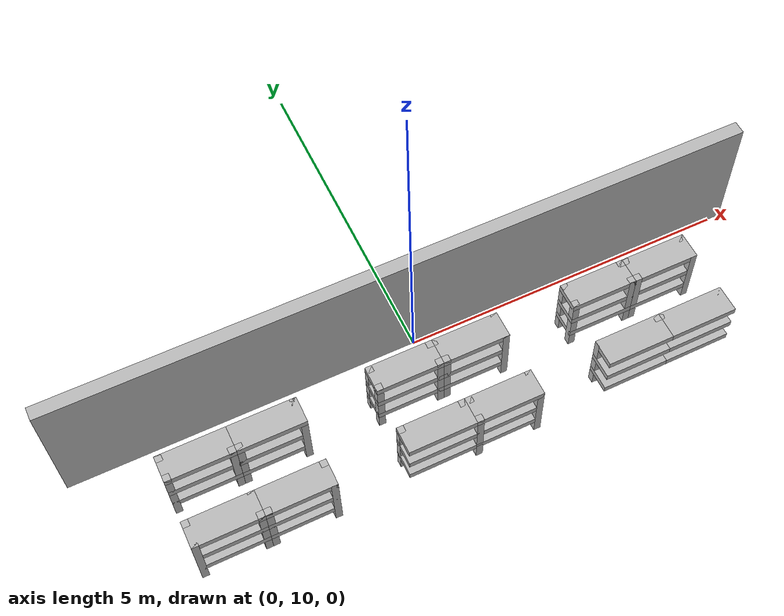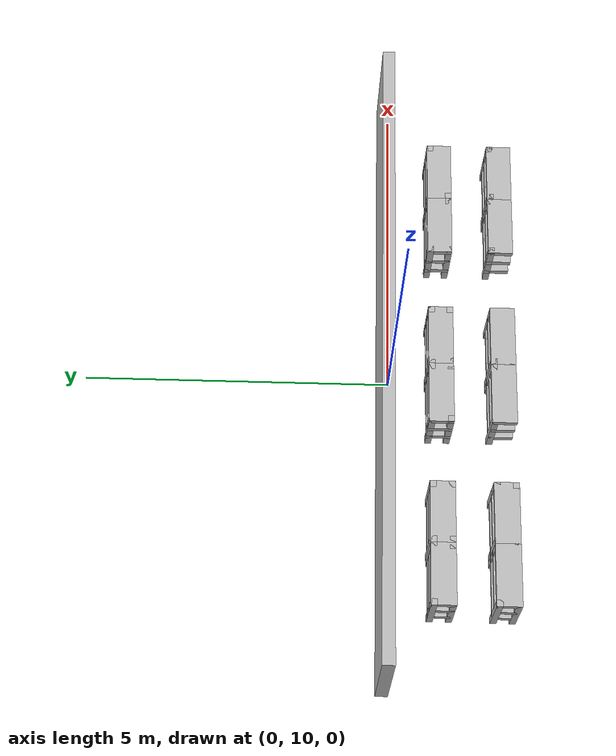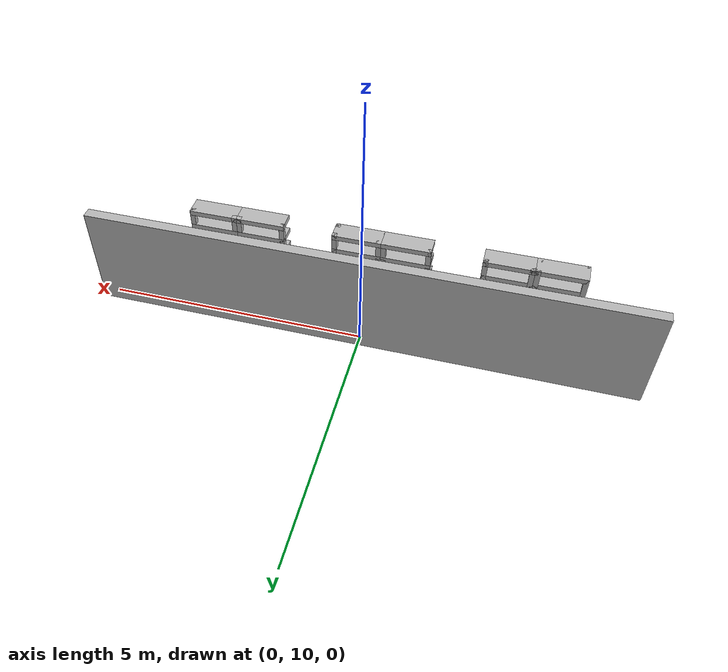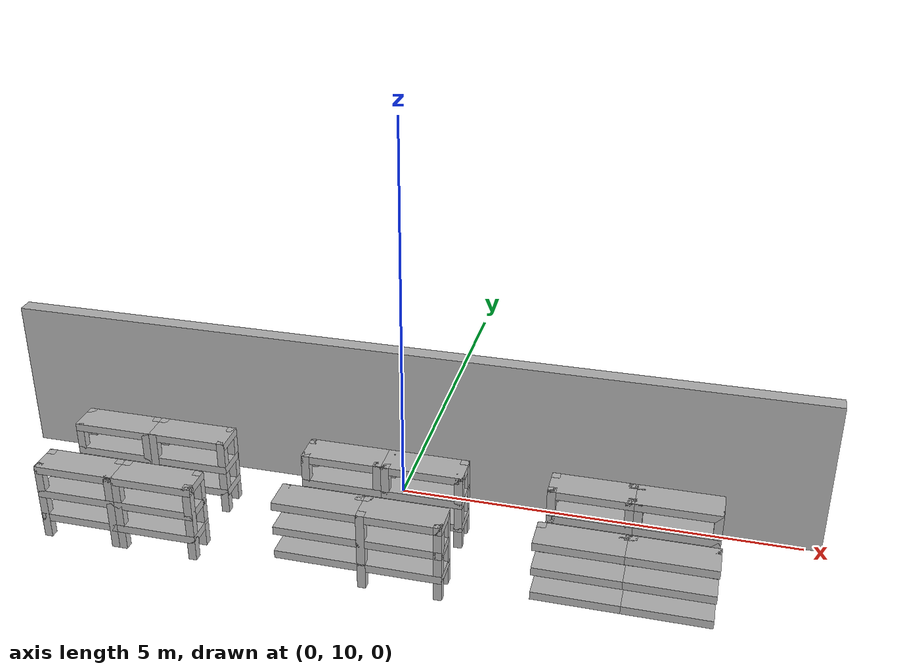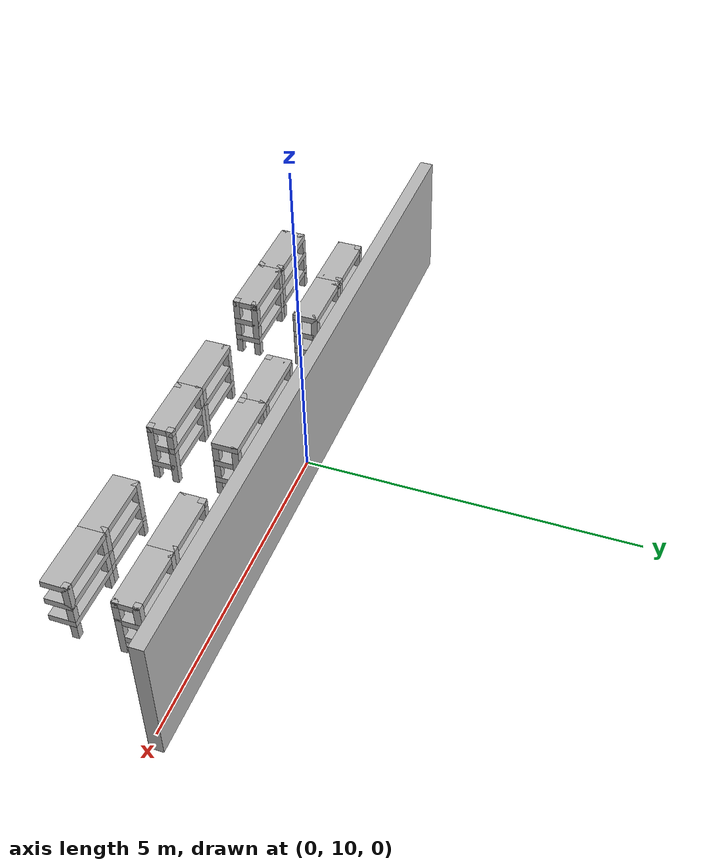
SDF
<sdf version="1.11">
 <model name="store-model">
  <static>true</static>
  <link name="store-shelf-l0-shelf0">
   <pose>2.5 9.2 0.95 0 0 0</pose>
   <visual name="store-shelf-v0-shelf0">
    <geometry><box><size>1 0.4 0.1</size></box></geometry>
    <material>
     <diffuse>0.726 0.726 0.726 1</diffuse>
     <ambient>0.726 0.726 0.726 1</ambient>
     <specular>0.726 0.726 0.726 1</specular>
    </material>
   </visual>
   <collision name="store-shelf-c0-shelf0"><geometry><box><size>1 0.4 0.1</size></box></geometry></collision>
  </link>
  <link name="store-shelf-l0-shelf1">
   <pose>2.5 9.2 0.6166666666666666 0 0 0</pose>
   <visual name="store-shelf-v0-shelf1">
    <geometry><box><size>1 0.4 0.1</size></box></geometry>
    <material>
     <diffuse>0.726 0.726 0.726 1</diffuse>
     <ambient>0.726 0.726 0.726 1</ambient>
     <specular>0.726 0.726 0.726 1</specular>
    </material>
   </visual>
   <collision name="store-shelf-c0-shelf1"><geometry><box><size>1 0.4 0.1</size></box></geometry></collision>
  </link>
  <link name="store-shelf-l0-shelf2">
   <pose>2.5 9.2 0.2833333333333333 0 0 0</pose>
   <visual name="store-shelf-v0-shelf2">
    <geometry><box><size>1 0.4 0.1</size></box></geometry>
    <material>
     <diffuse>0.726 0.726 0.726 1</diffuse>
     <ambient>0.726 0.726 0.726 1</ambient>
     <specular>0.726 0.726 0.726 1</specular>
    </material>
   </visual>
   <collision name="store-shelf-c0-shelf2"><geometry><box><size>1 0.4 0.1</size></box></geometry></collision>
  </link>
  <link name="store-shelf-l0-support0">
   <pose>2.05 9.05 0.5 0 0 0</pose>
   <visual name="store-shelf-v0-support0">
    <geometry><box><size>0.1 0.1 1</size></box></geometry>
    <material>
     <diffuse>0.726 0.726 0.726 1</diffuse>
     <ambient>0.726 0.726 0.726 1</ambient>
     <specular>0.726 0.726 0.726 1</specular>
    </material>
   </visual>
   <collision name="store-shelf-c0-support0"><geometry><box><size>0.1 0.1 1</size></box></geometry></collision>
  </link>
  <link name="store-shelf-l0-support1">
   <pose>2.95 9.05 0.5 0 0 0</pose>
   <visual name="store-shelf-v0-support1">
    <geometry><box><size>0.1 0.1 1</size></box></geometry>
    <material>
     <diffuse>0.726 0.726 0.726 1</diffuse>
     <ambient>0.726 0.726 0.726 1</ambient>
     <specular>0.726 0.726 0.726 1</specular>
    </material>
   </visual>
   <collision name="store-shelf-c0-support1"><geometry><box><size>0.1 0.1 1</size></box></geometry></collision>
  </link>
  <link name="store-shelf-l0-support2">
   <pose>2.05 9.35 0.5 0 0 0</pose>
   <visual name="store-shelf-v0-support2">
    <geometry><box><size>0.1 0.1 1</size></box></geometry>
    <material>
     <diffuse>0.726 0.726 0.726 1</diffuse>
     <ambient>0.726 0.726 0.726 1</ambient>
     <specular>0.726 0.726 0.726 1</specular>
    </material>
   </visual>
   <collision name="store-shelf-c0-support2"><geometry><box><size>0.1 0.1 1</size></box></geometry></collision>
  </link>
  <link name="store-shelf-l0-support3">
   <pose>2.95 9.35 0.5 0 0 0</pose>
   <visual name="store-shelf-v0-support3">
    <geometry><box><size>0.1 0.1 1</size></box></geometry>
    <material>
     <diffuse>0.726 0.726 0.726 1</diffuse>
     <ambient>0.726 0.726 0.726 1</ambient>
     <specular>0.726 0.726 0.726 1</specular>
    </material>
   </visual>
   <collision name="store-shelf-c0-support3"><geometry><box><size>0.1 0.1 1</size></box></geometry></collision>
  </link>
  <link name="store-shelf-l1-shelf0">
   <pose>2.5 8.2 0.95 0 0 0</pose>
   <visual name="store-shelf-v1-shelf0">
    <geometry><box><size>1 0.4 0.1</size></box></geometry>
    <material>
     <diffuse>0.726 0.726 0.726 1</diffuse>
     <ambient>0.726 0.726 0.726 1</ambient>
     <specular>0.726 0.726 0.726 1</specular>
    </material>
   </visual>
   <collision name="store-shelf-c1-shelf0"><geometry><box><size>1 0.4 0.1</size></box></geometry></collision>
  </link>
  <link name="store-shelf-l1-shelf1">
   <pose>2.5 8.2 0.6166666666666666 0 0 0</pose>
   <visual name="store-shelf-v1-shelf1">
    <geometry><box><size>1 0.4 0.1</size></box></geometry>
    <material>
     <diffuse>0.726 0.726 0.726 1</diffuse>
     <ambient>0.726 0.726 0.726 1</ambient>
     <specular>0.726 0.726 0.726 1</specular>
    </material>
   </visual>
   <collision name="store-shelf-c1-shelf1"><geometry><box><size>1 0.4 0.1</size></box></geometry></collision>
  </link>
  <link name="store-shelf-l1-shelf2">
   <pose>2.5 8.2 0.2833333333333333 0 0 0</pose>
   <visual name="store-shelf-v1-shelf2">
    <geometry><box><size>1 0.4 0.1</size></box></geometry>
    <material>
     <diffuse>0.726 0.726 0.726 1</diffuse>
     <ambient>0.726 0.726 0.726 1</ambient>
     <specular>0.726 0.726 0.726 1</specular>
    </material>
   </visual>
   <collision name="store-shelf-c1-shelf2"><geometry><box><size>1 0.4 0.1</size></box></geometry></collision>
  </link>
  <link name="store-shelf-l1-support2">
   <pose>2.05 8.35 0.5 0 0 0</pose>
   <visual name="store-shelf-v1-support2">
    <geometry><box><size>0.1 0.1 1</size></box></geometry>
    <material>
     <diffuse>0.726 0.726 0.726 1</diffuse>
     <ambient>0.726 0.726 0.726 1</ambient>
     <specular>0.726 0.726 0.726 1</specular>
    </material>
   </visual>
   <collision name="store-shelf-c1-support2"><geometry><box><size>0.1 0.1 1</size></box></geometry></collision>
  </link>
  <link name="store-shelf-l1-support3">
   <pose>2.95 8.35 0.5 0 0 0</pose>
   <visual name="store-shelf-v1-support3">
    <geometry><box><size>0.1 0.1 1</size></box></geometry>
    <material>
     <diffuse>0.726 0.726 0.726 1</diffuse>
     <ambient>0.726 0.726 0.726 1</ambient>
     <specular>0.726 0.726 0.726 1</specular>
    </material>
   </visual>
   <collision name="store-shelf-c1-support3"><geometry><box><size>0.1 0.1 1</size></box></geometry></collision>
  </link>
  <link name="store-shelf-l4-shelf0">
   <pose>3.5 8.2 0.95 0 0 0</pose>
   <visual name="store-shelf-v4-shelf0">
    <geometry><box><size>1 0.4 0.1</size></box></geometry>
    <material>
     <diffuse>0.726 0.726 0.726 1</diffuse>
     <ambient>0.726 0.726 0.726 1</ambient>
     <specular>0.726 0.726 0.726 1</specular>
    </material>
   </visual>
   <collision name="store-shelf-c4-shelf0"><geometry><box><size>1 0.4 0.1</size></box></geometry></collision>
  </link>
  <link name="store-shelf-l4-shelf1">
   <pose>3.5 8.2 0.6166666666666666 0 0 0</pose>
   <visual name="store-shelf-v4-shelf1">
    <geometry><box><size>1 0.4 0.1</size></box></geometry>
    <material>
     <diffuse>0.726 0.726 0.726 1</diffuse>
     <ambient>0.726 0.726 0.726 1</ambient>
     <specular>0.726 0.726 0.726 1</specular>
    </material>
   </visual>
   <collision name="store-shelf-c4-shelf1"><geometry><box><size>1 0.4 0.1</size></box></geometry></collision>
  </link>
  <link name="store-shelf-l4-shelf2">
   <pose>3.5 8.2 0.2833333333333333 0 0 0</pose>
   <visual name="store-shelf-v4-shelf2">
    <geometry><box><size>1 0.4 0.1</size></box></geometry>
    <material>
     <diffuse>0.726 0.726 0.726 1</diffuse>
     <ambient>0.726 0.726 0.726 1</ambient>
     <specular>0.726 0.726 0.726 1</specular>
    </material>
   </visual>
   <collision name="store-shelf-c4-shelf2"><geometry><box><size>1 0.4 0.1</size></box></geometry></collision>
  </link>
  <link name="store-shelf-l4-support2">
   <pose>3.05 8.35 0.5 0 0 0</pose>
   <visual name="store-shelf-v4-support2">
    <geometry><box><size>0.1 0.1 1</size></box></geometry>
    <material>
     <diffuse>0.726 0.726 0.726 1</diffuse>
     <ambient>0.726 0.726 0.726 1</ambient>
     <specular>0.726 0.726 0.726 1</specular>
    </material>
   </visual>
   <collision name="store-shelf-c4-support2"><geometry><box><size>0.1 0.1 1</size></box></geometry></collision>
  </link>
  <link name="store-shelf-l4-support3">
   <pose>3.95 8.35 0.5 0 0 0</pose>
   <visual name="store-shelf-v4-support3">
    <geometry><box><size>0.1 0.1 1</size></box></geometry>
    <material>
     <diffuse>0.726 0.726 0.726 1</diffuse>
     <ambient>0.726 0.726 0.726 1</ambient>
     <specular>0.726 0.726 0.726 1</specular>
    </material>
   </visual>
   <collision name="store-shelf-c4-support3"><geometry><box><size>0.1 0.1 1</size></box></geometry></collision>
  </link>
  <link name="store-shelf-l5-shelf0">
   <pose>3.5 9.2 0.95 0 0 0</pose>
   <visual name="store-shelf-v5-shelf0">
    <geometry><box><size>1 0.4 0.1</size></box></geometry>
    <material>
     <diffuse>0.726 0.726 0.726 1</diffuse>
     <ambient>0.726 0.726 0.726 1</ambient>
     <specular>0.726 0.726 0.726 1</specular>
    </material>
   </visual>
   <collision name="store-shelf-c5-shelf0"><geometry><box><size>1 0.4 0.1</size></box></geometry></collision>
  </link>
  <link name="store-shelf-l5-shelf1">
   <pose>3.5 9.2 0.6166666666666666 0 0 0</pose>
   <visual name="store-shelf-v5-shelf1">
    <geometry><box><size>1 0.4 0.1</size></box></geometry>
    <material>
     <diffuse>0.726 0.726 0.726 1</diffuse>
     <ambient>0.726 0.726 0.726 1</ambient>
     <specular>0.726 0.726 0.726 1</specular>
    </material>
   </visual>
   <collision name="store-shelf-c5-shelf1"><geometry><box><size>1 0.4 0.1</size></box></geometry></collision>
  </link>
  <link name="store-shelf-l5-shelf2">
   <pose>3.5 9.2 0.2833333333333333 0 0 0</pose>
   <visual name="store-shelf-v5-shelf2">
    <geometry><box><size>1 0.4 0.1</size></box></geometry>
    <material>
     <diffuse>0.726 0.726 0.726 1</diffuse>
     <ambient>0.726 0.726 0.726 1</ambient>
     <specular>0.726 0.726 0.726 1</specular>
    </material>
   </visual>
   <collision name="store-shelf-c5-shelf2"><geometry><box><size>1 0.4 0.1</size></box></geometry></collision>
  </link>
  <link name="store-shelf-l5-support0">
   <pose>3.05 9.05 0.5 0 0 0</pose>
   <visual name="store-shelf-v5-support0">
    <geometry><box><size>0.1 0.1 1</size></box></geometry>
    <material>
     <diffuse>0.726 0.726 0.726 1</diffuse>
     <ambient>0.726 0.726 0.726 1</ambient>
     <specular>0.726 0.726 0.726 1</specular>
    </material>
   </visual>
   <collision name="store-shelf-c5-support0"><geometry><box><size>0.1 0.1 1</size></box></geometry></collision>
  </link>
  <link name="store-shelf-l5-support1">
   <pose>3.95 9.05 0.5 0 0 0</pose>
   <visual name="store-shelf-v5-support1">
    <geometry><box><size>0.1 0.1 1</size></box></geometry>
    <material>
     <diffuse>0.726 0.726 0.726 1</diffuse>
     <ambient>0.726 0.726 0.726 1</ambient>
     <specular>0.726 0.726 0.726 1</specular>
    </material>
   </visual>
   <collision name="store-shelf-c5-support1"><geometry><box><size>0.1 0.1 1</size></box></geometry></collision>
  </link>
  <link name="store-shelf-l5-support2">
   <pose>3.05 9.35 0.5 0 0 0</pose>
   <visual name="store-shelf-v5-support2">
    <geometry><box><size>0.1 0.1 1</size></box></geometry>
    <material>
     <diffuse>0.726 0.726 0.726 1</diffuse>
     <ambient>0.726 0.726 0.726 1</ambient>
     <specular>0.726 0.726 0.726 1</specular>
    </material>
   </visual>
   <collision name="store-shelf-c5-support2"><geometry><box><size>0.1 0.1 1</size></box></geometry></collision>
  </link>
  <link name="store-shelf-l5-support3">
   <pose>3.95 9.35 0.5 0 0 0</pose>
   <visual name="store-shelf-v5-support3">
    <geometry><box><size>0.1 0.1 1</size></box></geometry>
    <material>
     <diffuse>0.726 0.726 0.726 1</diffuse>
     <ambient>0.726 0.726 0.726 1</ambient>
     <specular>0.726 0.726 0.726 1</specular>
    </material>
   </visual>
   <collision name="store-shelf-c5-support3"><geometry><box><size>0.1 0.1 1</size></box></geometry></collision>
  </link>
  <link name="store-shelf-l7-shelf0">
   <pose>-0.5 8.2 0.95 0 0 0</pose>
   <visual name="store-shelf-v7-shelf0">
    <geometry><box><size>1 0.4 0.1</size></box></geometry>
    <material>
     <diffuse>0.726 0.726 0.726 1</diffuse>
     <ambient>0.726 0.726 0.726 1</ambient>
     <specular>0.726 0.726 0.726 1</specular>
    </material>
   </visual>
   <collision name="store-shelf-c7-shelf0"><geometry><box><size>1 0.4 0.1</size></box></geometry></collision>
  </link>
  <link name="store-shelf-l7-shelf1">
   <pose>-0.5 8.2 0.6166666666666666 0 0 0</pose>
   <visual name="store-shelf-v7-shelf1">
    <geometry><box><size>1 0.4 0.1</size></box></geometry>
    <material>
     <diffuse>0.726 0.726 0.726 1</diffuse>
     <ambient>0.726 0.726 0.726 1</ambient>
     <specular>0.726 0.726 0.726 1</specular>
    </material>
   </visual>
   <collision name="store-shelf-c7-shelf1"><geometry><box><size>1 0.4 0.1</size></box></geometry></collision>
  </link>
  <link name="store-shelf-l7-shelf2">
   <pose>-0.5 8.2 0.2833333333333333 0 0 0</pose>
   <visual name="store-shelf-v7-shelf2">
    <geometry><box><size>1 0.4 0.1</size></box></geometry>
    <material>
     <diffuse>0.726 0.726 0.726 1</diffuse>
     <ambient>0.726 0.726 0.726 1</ambient>
     <specular>0.726 0.726 0.726 1</specular>
    </material>
   </visual>
   <collision name="store-shelf-c7-shelf2"><geometry><box><size>1 0.4 0.1</size></box></geometry></collision>
  </link>
  <link name="store-shelf-l7-support2">
   <pose>-0.95 8.35 0.5 0 0 0</pose>
   <visual name="store-shelf-v7-support2">
    <geometry><box><size>0.1 0.1 1</size></box></geometry>
    <material>
     <diffuse>0.726 0.726 0.726 1</diffuse>
     <ambient>0.726 0.726 0.726 1</ambient>
     <specular>0.726 0.726 0.726 1</specular>
    </material>
   </visual>
   <collision name="store-shelf-c7-support2"><geometry><box><size>0.1 0.1 1</size></box></geometry></collision>
  </link>
  <link name="store-shelf-l7-support3">
   <pose>-0.05 8.35 0.5 0 0 0</pose>
   <visual name="store-shelf-v7-support3">
    <geometry><box><size>0.1 0.1 1</size></box></geometry>
    <material>
     <diffuse>0.726 0.726 0.726 1</diffuse>
     <ambient>0.726 0.726 0.726 1</ambient>
     <specular>0.726 0.726 0.726 1</specular>
    </material>
   </visual>
   <collision name="store-shelf-c7-support3"><geometry><box><size>0.1 0.1 1</size></box></geometry></collision>
  </link>
  <link name="store-shelf-l8-shelf0">
   <pose>-0.5 9.2 0.95 0 0 0</pose>
   <visual name="store-shelf-v8-shelf0">
    <geometry><box><size>1 0.4 0.1</size></box></geometry>
    <material>
     <diffuse>0.726 0.726 0.726 1</diffuse>
     <ambient>0.726 0.726 0.726 1</ambient>
     <specular>0.726 0.726 0.726 1</specular>
    </material>
   </visual>
   <collision name="store-shelf-c8-shelf0"><geometry><box><size>1 0.4 0.1</size></box></geometry></collision>
  </link>
  <link name="store-shelf-l8-shelf1">
   <pose>-0.5 9.2 0.6166666666666666 0 0 0</pose>
   <visual name="store-shelf-v8-shelf1">
    <geometry><box><size>1 0.4 0.1</size></box></geometry>
    <material>
     <diffuse>0.726 0.726 0.726 1</diffuse>
     <ambient>0.726 0.726 0.726 1</ambient>
     <specular>0.726 0.726 0.726 1</specular>
    </material>
   </visual>
   <collision name="store-shelf-c8-shelf1"><geometry><box><size>1 0.4 0.1</size></box></geometry></collision>
  </link>
  <link name="store-shelf-l8-shelf2">
   <pose>-0.5 9.2 0.2833333333333333 0 0 0</pose>
   <visual name="store-shelf-v8-shelf2">
    <geometry><box><size>1 0.4 0.1</size></box></geometry>
    <material>
     <diffuse>0.726 0.726 0.726 1</diffuse>
     <ambient>0.726 0.726 0.726 1</ambient>
     <specular>0.726 0.726 0.726 1</specular>
    </material>
   </visual>
   <collision name="store-shelf-c8-shelf2"><geometry><box><size>1 0.4 0.1</size></box></geometry></collision>
  </link>
  <link name="store-shelf-l8-support0">
   <pose>-0.95 9.05 0.5 0 0 0</pose>
   <visual name="store-shelf-v8-support0">
    <geometry><box><size>0.1 0.1 1</size></box></geometry>
    <material>
     <diffuse>0.726 0.726 0.726 1</diffuse>
     <ambient>0.726 0.726 0.726 1</ambient>
     <specular>0.726 0.726 0.726 1</specular>
    </material>
   </visual>
   <collision name="store-shelf-c8-support0"><geometry><box><size>0.1 0.1 1</size></box></geometry></collision>
  </link>
  <link name="store-shelf-l8-support1">
   <pose>-0.05 9.05 0.5 0 0 0</pose>
   <visual name="store-shelf-v8-support1">
    <geometry><box><size>0.1 0.1 1</size></box></geometry>
    <material>
     <diffuse>0.726 0.726 0.726 1</diffuse>
     <ambient>0.726 0.726 0.726 1</ambient>
     <specular>0.726 0.726 0.726 1</specular>
    </material>
   </visual>
   <collision name="store-shelf-c8-support1"><geometry><box><size>0.1 0.1 1</size></box></geometry></collision>
  </link>
  <link name="store-shelf-l8-support2">
   <pose>-0.95 9.35 0.5 0 0 0</pose>
   <visual name="store-shelf-v8-support2">
    <geometry><box><size>0.1 0.1 1</size></box></geometry>
    <material>
     <diffuse>0.726 0.726 0.726 1</diffuse>
     <ambient>0.726 0.726 0.726 1</ambient>
     <specular>0.726 0.726 0.726 1</specular>
    </material>
   </visual>
   <collision name="store-shelf-c8-support2"><geometry><box><size>0.1 0.1 1</size></box></geometry></collision>
  </link>
  <link name="store-shelf-l8-support3">
   <pose>-0.05 9.35 0.5 0 0 0</pose>
   <visual name="store-shelf-v8-support3">
    <geometry><box><size>0.1 0.1 1</size></box></geometry>
    <material>
     <diffuse>0.726 0.726 0.726 1</diffuse>
     <ambient>0.726 0.726 0.726 1</ambient>
     <specular>0.726 0.726 0.726 1</specular>
    </material>
   </visual>
   <collision name="store-shelf-c8-support3"><geometry><box><size>0.1 0.1 1</size></box></geometry></collision>
  </link>
  <link name="store-shelf-l10-shelf0">
   <pose>0.5 8.2 0.95 0 0 0</pose>
   <visual name="store-shelf-v10-shelf0">
    <geometry><box><size>1 0.4 0.1</size></box></geometry>
    <material>
     <diffuse>0.726 0.726 0.726 1</diffuse>
     <ambient>0.726 0.726 0.726 1</ambient>
     <specular>0.726 0.726 0.726 1</specular>
    </material>
   </visual>
   <collision name="store-shelf-c10-shelf0"><geometry><box><size>1 0.4 0.1</size></box></geometry></collision>
  </link>
  <link name="store-shelf-l10-shelf1">
   <pose>0.5 8.2 0.6166666666666666 0 0 0</pose>
   <visual name="store-shelf-v10-shelf1">
    <geometry><box><size>1 0.4 0.1</size></box></geometry>
    <material>
     <diffuse>0.726 0.726 0.726 1</diffuse>
     <ambient>0.726 0.726 0.726 1</ambient>
     <specular>0.726 0.726 0.726 1</specular>
    </material>
   </visual>
   <collision name="store-shelf-c10-shelf1"><geometry><box><size>1 0.4 0.1</size></box></geometry></collision>
  </link>
  <link name="store-shelf-l10-shelf2">
   <pose>0.5 8.2 0.2833333333333333 0 0 0</pose>
   <visual name="store-shelf-v10-shelf2">
    <geometry><box><size>1 0.4 0.1</size></box></geometry>
    <material>
     <diffuse>0.726 0.726 0.726 1</diffuse>
     <ambient>0.726 0.726 0.726 1</ambient>
     <specular>0.726 0.726 0.726 1</specular>
    </material>
   </visual>
   <collision name="store-shelf-c10-shelf2"><geometry><box><size>1 0.4 0.1</size></box></geometry></collision>
  </link>
  <link name="store-shelf-l10-support0">
   <pose>0.05 8.05 0.5 0 0 0</pose>
   <visual name="store-shelf-v10-support0">
    <geometry><box><size>0.1 0.1 1</size></box></geometry>
    <material>
     <diffuse>0.726 0.726 0.726 1</diffuse>
     <ambient>0.726 0.726 0.726 1</ambient>
     <specular>0.726 0.726 0.726 1</specular>
    </material>
   </visual>
   <collision name="store-shelf-c10-support0"><geometry><box><size>0.1 0.1 1</size></box></geometry></collision>
  </link>
  <link name="store-shelf-l10-support1">
   <pose>0.95 8.05 0.5 0 0 0</pose>
   <visual name="store-shelf-v10-support1">
    <geometry><box><size>0.1 0.1 1</size></box></geometry>
    <material>
     <diffuse>0.726 0.726 0.726 1</diffuse>
     <ambient>0.726 0.726 0.726 1</ambient>
     <specular>0.726 0.726 0.726 1</specular>
    </material>
   </visual>
   <collision name="store-shelf-c10-support1"><geometry><box><size>0.1 0.1 1</size></box></geometry></collision>
  </link>
  <link name="store-shelf-l10-support2">
   <pose>0.05 8.35 0.5 0 0 0</pose>
   <visual name="store-shelf-v10-support2">
    <geometry><box><size>0.1 0.1 1</size></box></geometry>
    <material>
     <diffuse>0.726 0.726 0.726 1</diffuse>
     <ambient>0.726 0.726 0.726 1</ambient>
     <specular>0.726 0.726 0.726 1</specular>
    </material>
   </visual>
   <collision name="store-shelf-c10-support2"><geometry><box><size>0.1 0.1 1</size></box></geometry></collision>
  </link>
  <link name="store-shelf-l10-support3">
   <pose>0.95 8.35 0.5 0 0 0</pose>
   <visual name="store-shelf-v10-support3">
    <geometry><box><size>0.1 0.1 1</size></box></geometry>
    <material>
     <diffuse>0.726 0.726 0.726 1</diffuse>
     <ambient>0.726 0.726 0.726 1</ambient>
     <specular>0.726 0.726 0.726 1</specular>
    </material>
   </visual>
   <collision name="store-shelf-c10-support3"><geometry><box><size>0.1 0.1 1</size></box></geometry></collision>
  </link>
  <link name="store-shelf-l11-shelf0">
   <pose>0.5 9.2 0.95 0 0 0</pose>
   <visual name="store-shelf-v11-shelf0">
    <geometry><box><size>1 0.4 0.1</size></box></geometry>
    <material>
     <diffuse>0.726 0.726 0.726 1</diffuse>
     <ambient>0.726 0.726 0.726 1</ambient>
     <specular>0.726 0.726 0.726 1</specular>
    </material>
   </visual>
   <collision name="store-shelf-c11-shelf0"><geometry><box><size>1 0.4 0.1</size></box></geometry></collision>
  </link>
  <link name="store-shelf-l11-shelf1">
   <pose>0.5 9.2 0.6166666666666666 0 0 0</pose>
   <visual name="store-shelf-v11-shelf1">
    <geometry><box><size>1 0.4 0.1</size></box></geometry>
    <material>
     <diffuse>0.726 0.726 0.726 1</diffuse>
     <ambient>0.726 0.726 0.726 1</ambient>
     <specular>0.726 0.726 0.726 1</specular>
    </material>
   </visual>
   <collision name="store-shelf-c11-shelf1"><geometry><box><size>1 0.4 0.1</size></box></geometry></collision>
  </link>
  <link name="store-shelf-l11-shelf2">
   <pose>0.5 9.2 0.2833333333333333 0 0 0</pose>
   <visual name="store-shelf-v11-shelf2">
    <geometry><box><size>1 0.4 0.1</size></box></geometry>
    <material>
     <diffuse>0.726 0.726 0.726 1</diffuse>
     <ambient>0.726 0.726 0.726 1</ambient>
     <specular>0.726 0.726 0.726 1</specular>
    </material>
   </visual>
   <collision name="store-shelf-c11-shelf2"><geometry><box><size>1 0.4 0.1</size></box></geometry></collision>
  </link>
  <link name="store-shelf-l11-support0">
   <pose>0.05 9.05 0.5 0 0 0</pose>
   <visual name="store-shelf-v11-support0">
    <geometry><box><size>0.1 0.1 1</size></box></geometry>
    <material>
     <diffuse>0.726 0.726 0.726 1</diffuse>
     <ambient>0.726 0.726 0.726 1</ambient>
     <specular>0.726 0.726 0.726 1</specular>
    </material>
   </visual>
   <collision name="store-shelf-c11-support0"><geometry><box><size>0.1 0.1 1</size></box></geometry></collision>
  </link>
  <link name="store-shelf-l11-support1">
   <pose>0.95 9.05 0.5 0 0 0</pose>
   <visual name="store-shelf-v11-support1">
    <geometry><box><size>0.1 0.1 1</size></box></geometry>
    <material>
     <diffuse>0.726 0.726 0.726 1</diffuse>
     <ambient>0.726 0.726 0.726 1</ambient>
     <specular>0.726 0.726 0.726 1</specular>
    </material>
   </visual>
   <collision name="store-shelf-c11-support1"><geometry><box><size>0.1 0.1 1</size></box></geometry></collision>
  </link>
  <link name="store-shelf-l11-support2">
   <pose>0.05 9.35 0.5 0 0 0</pose>
   <visual name="store-shelf-v11-support2">
    <geometry><box><size>0.1 0.1 1</size></box></geometry>
    <material>
     <diffuse>0.726 0.726 0.726 1</diffuse>
     <ambient>0.726 0.726 0.726 1</ambient>
     <specular>0.726 0.726 0.726 1</specular>
    </material>
   </visual>
   <collision name="store-shelf-c11-support2"><geometry><box><size>0.1 0.1 1</size></box></geometry></collision>
  </link>
  <link name="store-shelf-l11-support3">
   <pose>0.95 9.35 0.5 0 0 0</pose>
   <visual name="store-shelf-v11-support3">
    <geometry><box><size>0.1 0.1 1</size></box></geometry>
    <material>
     <diffuse>0.726 0.726 0.726 1</diffuse>
     <ambient>0.726 0.726 0.726 1</ambient>
     <specular>0.726 0.726 0.726 1</specular>
    </material>
   </visual>
   <collision name="store-shelf-c11-support3"><geometry><box><size>0.1 0.1 1</size></box></geometry></collision>
  </link>
  <link name="store-shelf-l13-shelf0">
   <pose>-3.5 8.2 0.95 0 0 0</pose>
   <visual name="store-shelf-v13-shelf0">
    <geometry><box><size>1 0.4 0.1</size></box></geometry>
    <material>
     <diffuse>0.726 0.726 0.726 1</diffuse>
     <ambient>0.726 0.726 0.726 1</ambient>
     <specular>0.726 0.726 0.726 1</specular>
    </material>
   </visual>
   <collision name="store-shelf-c13-shelf0"><geometry><box><size>1 0.4 0.1</size></box></geometry></collision>
  </link>
  <link name="store-shelf-l13-shelf1">
   <pose>-3.5 8.2 0.6166666666666666 0 0 0</pose>
   <visual name="store-shelf-v13-shelf1">
    <geometry><box><size>1 0.4 0.1</size></box></geometry>
    <material>
     <diffuse>0.726 0.726 0.726 1</diffuse>
     <ambient>0.726 0.726 0.726 1</ambient>
     <specular>0.726 0.726 0.726 1</specular>
    </material>
   </visual>
   <collision name="store-shelf-c13-shelf1"><geometry><box><size>1 0.4 0.1</size></box></geometry></collision>
  </link>
  <link name="store-shelf-l13-shelf2">
   <pose>-3.5 8.2 0.2833333333333333 0 0 0</pose>
   <visual name="store-shelf-v13-shelf2">
    <geometry><box><size>1 0.4 0.1</size></box></geometry>
    <material>
     <diffuse>0.726 0.726 0.726 1</diffuse>
     <ambient>0.726 0.726 0.726 1</ambient>
     <specular>0.726 0.726 0.726 1</specular>
    </material>
   </visual>
   <collision name="store-shelf-c13-shelf2"><geometry><box><size>1 0.4 0.1</size></box></geometry></collision>
  </link>
  <link name="store-shelf-l13-support0">
   <pose>-3.95 8.05 0.5 0 0 0</pose>
   <visual name="store-shelf-v13-support0">
    <geometry><box><size>0.1 0.1 1</size></box></geometry>
    <material>
     <diffuse>0.726 0.726 0.726 1</diffuse>
     <ambient>0.726 0.726 0.726 1</ambient>
     <specular>0.726 0.726 0.726 1</specular>
    </material>
   </visual>
   <collision name="store-shelf-c13-support0"><geometry><box><size>0.1 0.1 1</size></box></geometry></collision>
  </link>
  <link name="store-shelf-l13-support1">
   <pose>-3.05 8.05 0.5 0 0 0</pose>
   <visual name="store-shelf-v13-support1">
    <geometry><box><size>0.1 0.1 1</size></box></geometry>
    <material>
     <diffuse>0.726 0.726 0.726 1</diffuse>
     <ambient>0.726 0.726 0.726 1</ambient>
     <specular>0.726 0.726 0.726 1</specular>
    </material>
   </visual>
   <collision name="store-shelf-c13-support1"><geometry><box><size>0.1 0.1 1</size></box></geometry></collision>
  </link>
  <link name="store-shelf-l13-support2">
   <pose>-3.95 8.35 0.5 0 0 0</pose>
   <visual name="store-shelf-v13-support2">
    <geometry><box><size>0.1 0.1 1</size></box></geometry>
    <material>
     <diffuse>0.726 0.726 0.726 1</diffuse>
     <ambient>0.726 0.726 0.726 1</ambient>
     <specular>0.726 0.726 0.726 1</specular>
    </material>
   </visual>
   <collision name="store-shelf-c13-support2"><geometry><box><size>0.1 0.1 1</size></box></geometry></collision>
  </link>
  <link name="store-shelf-l13-support3">
   <pose>-3.05 8.35 0.5 0 0 0</pose>
   <visual name="store-shelf-v13-support3">
    <geometry><box><size>0.1 0.1 1</size></box></geometry>
    <material>
     <diffuse>0.726 0.726 0.726 1</diffuse>
     <ambient>0.726 0.726 0.726 1</ambient>
     <specular>0.726 0.726 0.726 1</specular>
    </material>
   </visual>
   <collision name="store-shelf-c13-support3"><geometry><box><size>0.1 0.1 1</size></box></geometry></collision>
  </link>
  <link name="store-shelf-l14-shelf0">
   <pose>-3.5 9.2 0.95 0 0 0</pose>
   <visual name="store-shelf-v14-shelf0">
    <geometry><box><size>1 0.4 0.1</size></box></geometry>
    <material>
     <diffuse>0.726 0.726 0.726 1</diffuse>
     <ambient>0.726 0.726 0.726 1</ambient>
     <specular>0.726 0.726 0.726 1</specular>
    </material>
   </visual>
   <collision name="store-shelf-c14-shelf0"><geometry><box><size>1 0.4 0.1</size></box></geometry></collision>
  </link>
  <link name="store-shelf-l14-shelf1">
   <pose>-3.5 9.2 0.6166666666666666 0 0 0</pose>
   <visual name="store-shelf-v14-shelf1">
    <geometry><box><size>1 0.4 0.1</size></box></geometry>
    <material>
     <diffuse>0.726 0.726 0.726 1</diffuse>
     <ambient>0.726 0.726 0.726 1</ambient>
     <specular>0.726 0.726 0.726 1</specular>
    </material>
   </visual>
   <collision name="store-shelf-c14-shelf1"><geometry><box><size>1 0.4 0.1</size></box></geometry></collision>
  </link>
  <link name="store-shelf-l14-shelf2">
   <pose>-3.5 9.2 0.2833333333333333 0 0 0</pose>
   <visual name="store-shelf-v14-shelf2">
    <geometry><box><size>1 0.4 0.1</size></box></geometry>
    <material>
     <diffuse>0.726 0.726 0.726 1</diffuse>
     <ambient>0.726 0.726 0.726 1</ambient>
     <specular>0.726 0.726 0.726 1</specular>
    </material>
   </visual>
   <collision name="store-shelf-c14-shelf2"><geometry><box><size>1 0.4 0.1</size></box></geometry></collision>
  </link>
  <link name="store-shelf-l14-support0">
   <pose>-3.95 9.05 0.5 0 0 0</pose>
   <visual name="store-shelf-v14-support0">
    <geometry><box><size>0.1 0.1 1</size></box></geometry>
    <material>
     <diffuse>0.726 0.726 0.726 1</diffuse>
     <ambient>0.726 0.726 0.726 1</ambient>
     <specular>0.726 0.726 0.726 1</specular>
    </material>
   </visual>
   <collision name="store-shelf-c14-support0"><geometry><box><size>0.1 0.1 1</size></box></geometry></collision>
  </link>
  <link name="store-shelf-l14-support1">
   <pose>-3.05 9.05 0.5 0 0 0</pose>
   <visual name="store-shelf-v14-support1">
    <geometry><box><size>0.1 0.1 1</size></box></geometry>
    <material>
     <diffuse>0.726 0.726 0.726 1</diffuse>
     <ambient>0.726 0.726 0.726 1</ambient>
     <specular>0.726 0.726 0.726 1</specular>
    </material>
   </visual>
   <collision name="store-shelf-c14-support1"><geometry><box><size>0.1 0.1 1</size></box></geometry></collision>
  </link>
  <link name="store-shelf-l14-support2">
   <pose>-3.95 9.35 0.5 0 0 0</pose>
   <visual name="store-shelf-v14-support2">
    <geometry><box><size>0.1 0.1 1</size></box></geometry>
    <material>
     <diffuse>0.726 0.726 0.726 1</diffuse>
     <ambient>0.726 0.726 0.726 1</ambient>
     <specular>0.726 0.726 0.726 1</specular>
    </material>
   </visual>
   <collision name="store-shelf-c14-support2"><geometry><box><size>0.1 0.1 1</size></box></geometry></collision>
  </link>
  <link name="store-shelf-l14-support3">
   <pose>-3.05 9.35 0.5 0 0 0</pose>
   <visual name="store-shelf-v14-support3">
    <geometry><box><size>0.1 0.1 1</size></box></geometry>
    <material>
     <diffuse>0.726 0.726 0.726 1</diffuse>
     <ambient>0.726 0.726 0.726 1</ambient>
     <specular>0.726 0.726 0.726 1</specular>
    </material>
   </visual>
   <collision name="store-shelf-c14-support3"><geometry><box><size>0.1 0.1 1</size></box></geometry></collision>
  </link>
  <link name="store-shelf-l16-shelf0">
   <pose>-2.5 8.2 0.95 0 0 0</pose>
   <visual name="store-shelf-v16-shelf0">
    <geometry><box><size>1 0.4 0.1</size></box></geometry>
    <material>
     <diffuse>0.726 0.726 0.726 1</diffuse>
     <ambient>0.726 0.726 0.726 1</ambient>
     <specular>0.726 0.726 0.726 1</specular>
    </material>
   </visual>
   <collision name="store-shelf-c16-shelf0"><geometry><box><size>1 0.4 0.1</size></box></geometry></collision>
  </link>
  <link name="store-shelf-l16-shelf1">
   <pose>-2.5 8.2 0.6166666666666666 0 0 0</pose>
   <visual name="store-shelf-v16-shelf1">
    <geometry><box><size>1 0.4 0.1</size></box></geometry>
    <material>
     <diffuse>0.726 0.726 0.726 1</diffuse>
     <ambient>0.726 0.726 0.726 1</ambient>
     <specular>0.726 0.726 0.726 1</specular>
    </material>
   </visual>
   <collision name="store-shelf-c16-shelf1"><geometry><box><size>1 0.4 0.1</size></box></geometry></collision>
  </link>
  <link name="store-shelf-l16-shelf2">
   <pose>-2.5 8.2 0.2833333333333333 0 0 0</pose>
   <visual name="store-shelf-v16-shelf2">
    <geometry><box><size>1 0.4 0.1</size></box></geometry>
    <material>
     <diffuse>0.726 0.726 0.726 1</diffuse>
     <ambient>0.726 0.726 0.726 1</ambient>
     <specular>0.726 0.726 0.726 1</specular>
    </material>
   </visual>
   <collision name="store-shelf-c16-shelf2"><geometry><box><size>1 0.4 0.1</size></box></geometry></collision>
  </link>
  <link name="store-shelf-l16-support0">
   <pose>-2.95 8.05 0.5 0 0 0</pose>
   <visual name="store-shelf-v16-support0">
    <geometry><box><size>0.1 0.1 1</size></box></geometry>
    <material>
     <diffuse>0.726 0.726 0.726 1</diffuse>
     <ambient>0.726 0.726 0.726 1</ambient>
     <specular>0.726 0.726 0.726 1</specular>
    </material>
   </visual>
   <collision name="store-shelf-c16-support0"><geometry><box><size>0.1 0.1 1</size></box></geometry></collision>
  </link>
  <link name="store-shelf-l16-support1">
   <pose>-2.05 8.05 0.5 0 0 0</pose>
   <visual name="store-shelf-v16-support1">
    <geometry><box><size>0.1 0.1 1</size></box></geometry>
    <material>
     <diffuse>0.726 0.726 0.726 1</diffuse>
     <ambient>0.726 0.726 0.726 1</ambient>
     <specular>0.726 0.726 0.726 1</specular>
    </material>
   </visual>
   <collision name="store-shelf-c16-support1"><geometry><box><size>0.1 0.1 1</size></box></geometry></collision>
  </link>
  <link name="store-shelf-l16-support2">
   <pose>-2.95 8.35 0.5 0 0 0</pose>
   <visual name="store-shelf-v16-support2">
    <geometry><box><size>0.1 0.1 1</size></box></geometry>
    <material>
     <diffuse>0.726 0.726 0.726 1</diffuse>
     <ambient>0.726 0.726 0.726 1</ambient>
     <specular>0.726 0.726 0.726 1</specular>
    </material>
   </visual>
   <collision name="store-shelf-c16-support2"><geometry><box><size>0.1 0.1 1</size></box></geometry></collision>
  </link>
  <link name="store-shelf-l16-support3">
   <pose>-2.05 8.35 0.5 0 0 0</pose>
   <visual name="store-shelf-v16-support3">
    <geometry><box><size>0.1 0.1 1</size></box></geometry>
    <material>
     <diffuse>0.726 0.726 0.726 1</diffuse>
     <ambient>0.726 0.726 0.726 1</ambient>
     <specular>0.726 0.726 0.726 1</specular>
    </material>
   </visual>
   <collision name="store-shelf-c16-support3"><geometry><box><size>0.1 0.1 1</size></box></geometry></collision>
  </link>
  <link name="store-shelf-l17-shelf0">
   <pose>-2.5 9.2 0.95 0 0 0</pose>
   <visual name="store-shelf-v17-shelf0">
    <geometry><box><size>1 0.4 0.1</size></box></geometry>
    <material>
     <diffuse>0.726 0.726 0.726 1</diffuse>
     <ambient>0.726 0.726 0.726 1</ambient>
     <specular>0.726 0.726 0.726 1</specular>
    </material>
   </visual>
   <collision name="store-shelf-c17-shelf0"><geometry><box><size>1 0.4 0.1</size></box></geometry></collision>
  </link>
  <link name="store-shelf-l17-shelf1">
   <pose>-2.5 9.2 0.6166666666666666 0 0 0</pose>
   <visual name="store-shelf-v17-shelf1">
    <geometry><box><size>1 0.4 0.1</size></box></geometry>
    <material>
     <diffuse>0.726 0.726 0.726 1</diffuse>
     <ambient>0.726 0.726 0.726 1</ambient>
     <specular>0.726 0.726 0.726 1</specular>
    </material>
   </visual>
   <collision name="store-shelf-c17-shelf1"><geometry><box><size>1 0.4 0.1</size></box></geometry></collision>
  </link>
  <link name="store-shelf-l17-shelf2">
   <pose>-2.5 9.2 0.2833333333333333 0 0 0</pose>
   <visual name="store-shelf-v17-shelf2">
    <geometry><box><size>1 0.4 0.1</size></box></geometry>
    <material>
     <diffuse>0.726 0.726 0.726 1</diffuse>
     <ambient>0.726 0.726 0.726 1</ambient>
     <specular>0.726 0.726 0.726 1</specular>
    </material>
   </visual>
   <collision name="store-shelf-c17-shelf2"><geometry><box><size>1 0.4 0.1</size></box></geometry></collision>
  </link>
  <link name="store-shelf-l17-support0">
   <pose>-2.95 9.05 0.5 0 0 0</pose>
   <visual name="store-shelf-v17-support0">
    <geometry><box><size>0.1 0.1 1</size></box></geometry>
    <material>
     <diffuse>0.726 0.726 0.726 1</diffuse>
     <ambient>0.726 0.726 0.726 1</ambient>
     <specular>0.726 0.726 0.726 1</specular>
    </material>
   </visual>
   <collision name="store-shelf-c17-support0"><geometry><box><size>0.1 0.1 1</size></box></geometry></collision>
  </link>
  <link name="store-shelf-l17-support1">
   <pose>-2.05 9.05 0.5 0 0 0</pose>
   <visual name="store-shelf-v17-support1">
    <geometry><box><size>0.1 0.1 1</size></box></geometry>
    <material>
     <diffuse>0.726 0.726 0.726 1</diffuse>
     <ambient>0.726 0.726 0.726 1</ambient>
     <specular>0.726 0.726 0.726 1</specular>
    </material>
   </visual>
   <collision name="store-shelf-c17-support1"><geometry><box><size>0.1 0.1 1</size></box></geometry></collision>
  </link>
  <link name="store-shelf-l17-support2">
   <pose>-2.95 9.35 0.5 0 0 0</pose>
   <visual name="store-shelf-v17-support2">
    <geometry><box><size>0.1 0.1 1</size></box></geometry>
    <material>
     <diffuse>0.726 0.726 0.726 1</diffuse>
     <ambient>0.726 0.726 0.726 1</ambient>
     <specular>0.726 0.726 0.726 1</specular>
    </material>
   </visual>
   <collision name="store-shelf-c17-support2"><geometry><box><size>0.1 0.1 1</size></box></geometry></collision>
  </link>
  <link name="store-shelf-l17-support3">
   <pose>-2.05 9.35 0.5 0 0 0</pose>
   <visual name="store-shelf-v17-support3">
    <geometry><box><size>0.1 0.1 1</size></box></geometry>
    <material>
     <diffuse>0.726 0.726 0.726 1</diffuse>
     <ambient>0.726 0.726 0.726 1</ambient>
     <specular>0.726 0.726 0.726 1</specular>
    </material>
   </visual>
   <collision name="store-shelf-c17-support3"><geometry><box><size>0.1 0.1 1</size></box></geometry></collision>
  </link>
  <link name="store-walls-link2">
   <pose>0.0 10.1 1.0 0 0 0</pose>
   <visual name="store-walls-v-wall2">
    <geometry><box><size>10.4 0.2 2</size></box></geometry>
    <material>
     <diffuse>0.726 0.726 0.726 1</diffuse>
     <ambient>0.726 0.726 0.726 1</ambient>
     <specular>0.726 0.726 0.726 1</specular>
    </material>
   </visual>
   <collision name="store-walls-c-wall2"><geometry><box><size>10.4 0.2 2</size></box></geometry></collision>
  </link>
 </model>
</sdf>
